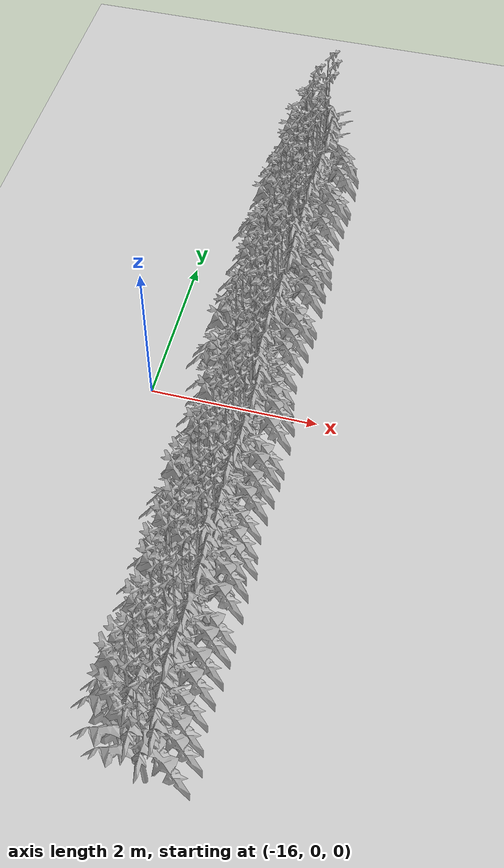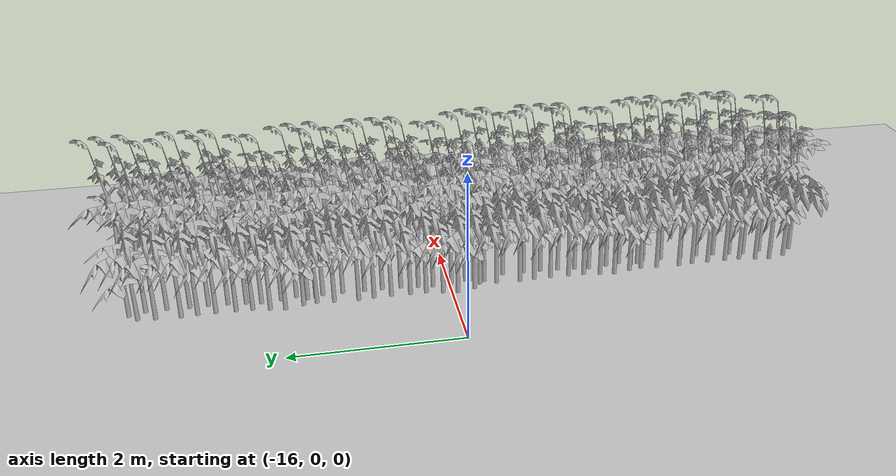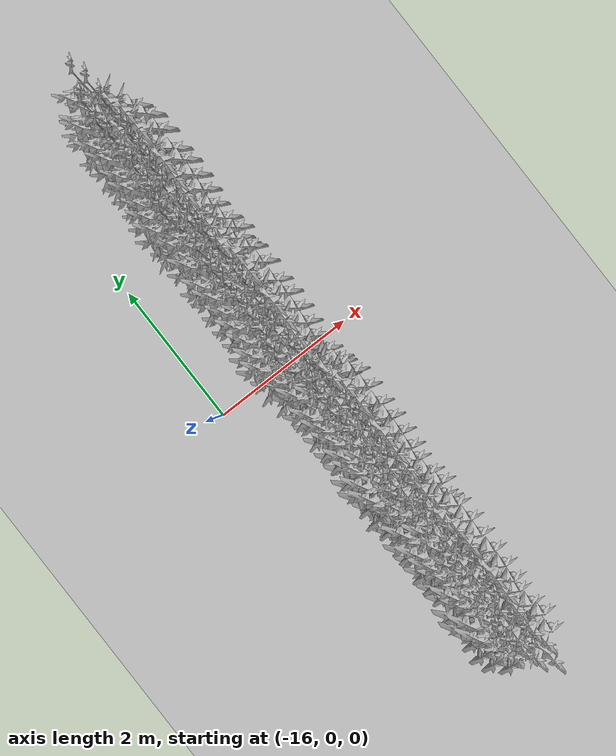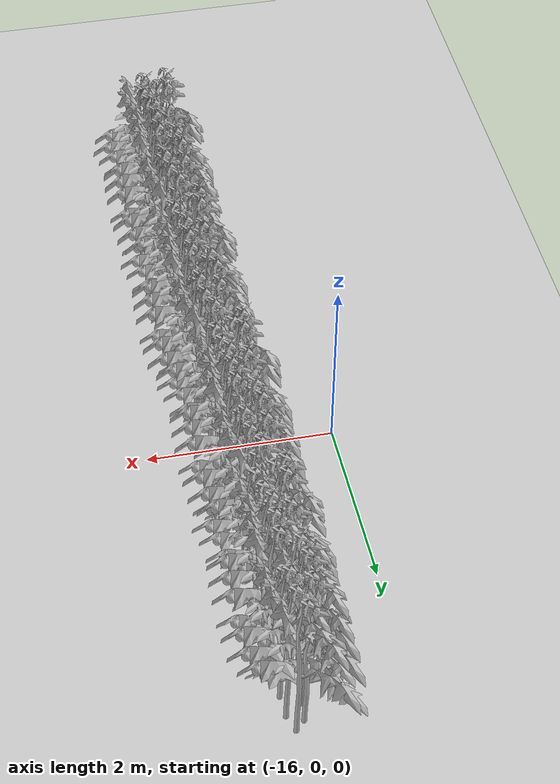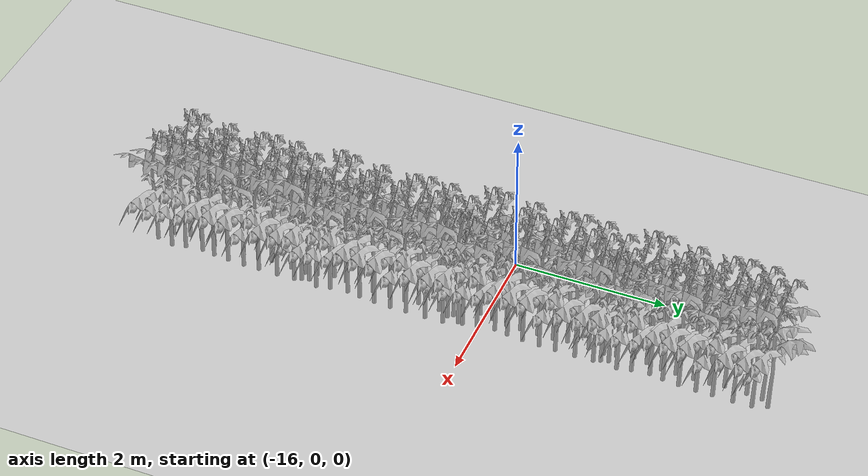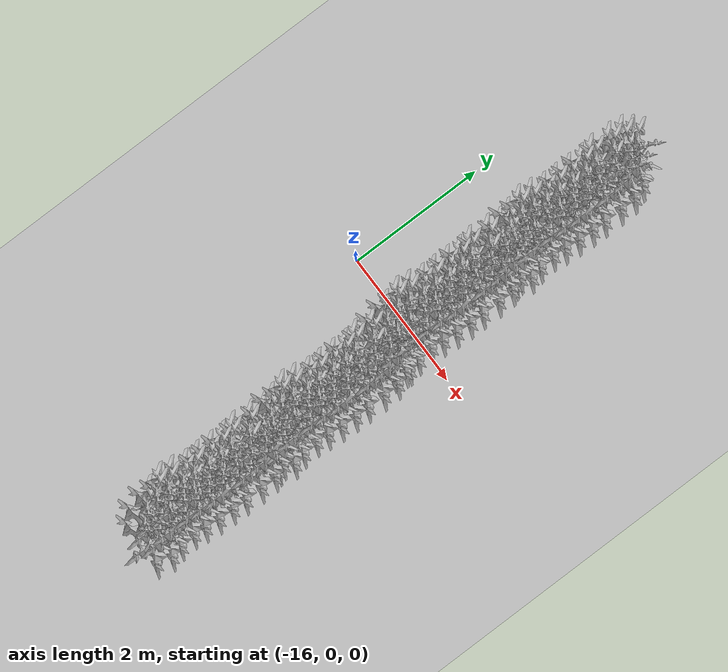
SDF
<sdf version="1.6">
 <world name="default">
  <model name="ground_plane">
   <static>1</static>
   <link name="link">
    <collision name="collision">
     <geometry><plane><normal>0 0 1</normal><size>100 100</size></plane></geometry>
     <surface>
      <contact><collide_bitmask>65535</collide_bitmask></contact>
      <friction><ode><mu>100</mu><mu2>50</mu2></ode></friction>
     </surface>
    </collision>
    <visual name="visual">
     <cast_shadows>0</cast_shadows>
     <geometry><plane><normal>0 0 1</normal><size>100 100</size></plane></geometry>
     <material>
      <script><uri>file://media/materials/scripts/gazebo.material</uri><name>Gazebo/Grey</name></script>
     </material>
    </visual>
   </link>
  </model>
  <model name="MIddle_Plant_3_3">
   <model name="MIddle_Plant_1">
    <model name="tomato_plant_big">
     <static>1</static>
     <link name="link">
      <collision name="collision">
       <pose>0 0 0 1.5708 -0 0</pose>
       <geometry><mesh><scale>0.5 0.6 0.5</scale><uri>model://stick/meshes/stick.dae</uri></mesh></geometry>
      </collision>
      <visual name="visual">
       <geometry>
        <mesh><scale>5e-06 5e-06 7e-06</scale><uri>model://tomato_plant_big/meshes/tomato-plant.dae</uri></mesh>
       </geometry>
      </visual>
     </link>
     <pose>-0.144318 -0.693607 -0 0 -0 0</pose>
    </model>
    <model name="tomato_plant_big_0">
     <static>1</static>
     <link name="link">
      <collision name="collision">
       <pose>0 0 0 1.5708 -0 0</pose>
       <geometry><mesh><scale>0.5 0.6 0.5</scale><uri>model://stick/meshes/stick.dae</uri></mesh></geometry>
      </collision>
      <visual name="visual">
       <geometry>
        <mesh><scale>5e-06 5e-06 7e-06</scale><uri>model://tomato_plant_big/meshes/tomato-plant.dae</uri></mesh>
       </geometry>
      </visual>
     </link>
     <pose>-0.11784 -0.519827 0 0 -0 0</pose>
    </model>
    <model name="tomato_plant_big_1">
     <static>1</static>
     <link name="link">
      <collision name="collision">
       <pose>0 0 0 1.5708 -0 0</pose>
       <geometry><mesh><scale>0.5 0.6 0.5</scale><uri>model://stick/meshes/stick.dae</uri></mesh></geometry>
      </collision>
      <visual name="visual">
       <geometry>
        <mesh><scale>5e-06 5e-06 7e-06</scale><uri>model://tomato_plant_big/meshes/tomato-plant.dae</uri></mesh>
       </geometry>
      </visual>
     </link>
     <pose>0.073755 -0.247584 0 0 -0 0</pose>
    </model>
    <model name="tomato_plant_big_10">
     <static>1</static>
     <link name="link">
      <collision name="collision">
       <pose>0 0 0 1.5708 -0 0</pose>
       <geometry><mesh><scale>0.5 0.6 0.5</scale><uri>model://stick/meshes/stick.dae</uri></mesh></geometry>
      </collision>
      <visual name="visual">
       <geometry>
        <mesh><scale>5e-06 5e-06 7e-06</scale><uri>model://tomato_plant_big/meshes/tomato-plant.dae</uri></mesh>
       </geometry>
      </visual>
     </link>
     <pose>0.037052 1.07094 0 0 -0 0</pose>
    </model>
    <model name="tomato_plant_big_2">
     <static>1</static>
     <link name="link">
      <collision name="collision">
       <pose>0 0 0 1.5708 -0 0</pose>
       <geometry><mesh><scale>0.5 0.6 0.5</scale><uri>model://stick/meshes/stick.dae</uri></mesh></geometry>
      </collision>
      <visual name="visual">
       <geometry>
        <mesh><scale>5e-06 5e-06 7e-06</scale><uri>model://tomato_plant_big/meshes/tomato-plant.dae</uri></mesh>
       </geometry>
      </visual>
     </link>
     <pose>-0.076926 -0.131165 0 0 -0 0</pose>
    </model>
    <model name="tomato_plant_big_3">
     <static>1</static>
     <link name="link">
      <collision name="collision">
       <pose>0 0 0 1.5708 -0 0</pose>
       <geometry><mesh><scale>0.5 0.6 0.5</scale><uri>model://stick/meshes/stick.dae</uri></mesh></geometry>
      </collision>
      <visual name="visual">
       <geometry>
        <mesh><scale>5e-06 5e-06 7e-06</scale><uri>model://tomato_plant_big/meshes/tomato-plant.dae</uri></mesh>
       </geometry>
      </visual>
     </link>
     <pose>0.093714 -0.038386 0 0 -0 0</pose>
    </model>
    <model name="tomato_plant_big_4">
     <static>1</static>
     <link name="link">
      <collision name="collision">
       <pose>0 0 0 1.5708 -0 0</pose>
       <geometry><mesh><scale>0.5 0.6 0.5</scale><uri>model://stick/meshes/stick.dae</uri></mesh></geometry>
      </collision>
      <visual name="visual">
       <geometry>
        <mesh><scale>5e-06 5e-06 7e-06</scale><uri>model://tomato_plant_big/meshes/tomato-plant.dae</uri></mesh>
       </geometry>
      </visual>
     </link>
     <pose>0.103117 0.184356 0 0 -0 0</pose>
    </model>
    <model name="tomato_plant_big_5">
     <static>1</static>
     <link name="link">
      <collision name="collision">
       <pose>0 0 0 1.5708 -0 0</pose>
       <geometry><mesh><scale>0.5 0.6 0.5</scale><uri>model://stick/meshes/stick.dae</uri></mesh></geometry>
      </collision>
      <visual name="visual">
       <geometry>
        <mesh><scale>5e-06 5e-06 7e-06</scale><uri>model://tomato_plant_big/meshes/tomato-plant.dae</uri></mesh>
       </geometry>
      </visual>
     </link>
     <pose>-0.074883 0.301479 0 0 -0 0</pose>
    </model>
    <model name="tomato_plant_big_6">
     <static>1</static>
     <link name="link">
      <collision name="collision">
       <pose>0 0 0 1.5708 -0 0</pose>
       <geometry><mesh><scale>0.5 0.6 0.5</scale><uri>model://stick/meshes/stick.dae</uri></mesh></geometry>
      </collision>
      <visual name="visual">
       <geometry>
        <mesh><scale>5e-06 5e-06 7e-06</scale><uri>model://tomato_plant_big/meshes/tomato-plant.dae</uri></mesh>
       </geometry>
      </visual>
     </link>
     <pose>-0.096921 0.484007 0 0 -0 0</pose>
    </model>
    <model name="tomato_plant_big_7">
     <static>1</static>
     <link name="link">
      <collision name="collision">
       <pose>0 0 0 1.5708 -0 0</pose>
       <geometry><mesh><scale>0.5 0.6 0.5</scale><uri>model://stick/meshes/stick.dae</uri></mesh></geometry>
      </collision>
      <visual name="visual">
       <geometry>
        <mesh><scale>5e-06 5e-06 7e-06</scale><uri>model://tomato_plant_big/meshes/tomato-plant.dae</uri></mesh>
       </geometry>
      </visual>
     </link>
     <pose>0.107491 0.653976 0 0 -0 0</pose>
    </model>
    <model name="tomato_plant_big_8">
     <static>1</static>
     <link name="link">
      <collision name="collision">
       <pose>0 0 0 1.5708 -0 0</pose>
       <geometry><mesh><scale>0.5 0.6 0.5</scale><uri>model://stick/meshes/stick.dae</uri></mesh></geometry>
      </collision>
      <visual name="visual">
       <geometry>
        <mesh><scale>5e-06 5e-06 7e-06</scale><uri>model://tomato_plant_big/meshes/tomato-plant.dae</uri></mesh>
       </geometry>
      </visual>
     </link>
     <pose>-0.07985 0.768549 0 0 -0 0</pose>
    </model>
    <model name="tomato_plant_big_9">
     <static>1</static>
     <link name="link">
      <collision name="collision">
       <pose>0 0 0 1.5708 -0 0</pose>
       <geometry><mesh><scale>0.5 0.6 0.5</scale><uri>model://stick/meshes/stick.dae</uri></mesh></geometry>
      </collision>
      <visual name="visual">
       <geometry>
        <mesh><scale>5e-06 5e-06 7e-06</scale><uri>model://tomato_plant_big/meshes/tomato-plant.dae</uri></mesh>
       </geometry>
      </visual>
     </link>
     <pose>0.098361 0.890852 0 0 -0 0</pose>
    </model>
    <model name="tomato_plant_medium">
     <static>1</static>
     <link name="link">
      <collision name="collision">
       <pose>0 0 0 1.5708 -0 0</pose>
       <geometry><mesh><scale>0.5 0.5 0.5</scale><uri>model://stick/meshes/stick.dae</uri></mesh></geometry>
      </collision>
      <visual name="visual">
       <geometry>
        <mesh><scale>5e-06 5e-06 6e-06</scale><uri>model://tomato_plant_medium/meshes/tomato-plant.dae</uri></mesh>
       </geometry>
      </visual>
     </link>
     <pose>0.056913 -1.05328 0 0 -0 0</pose>
    </model>
    <model name="tomato_plant_medium_0">
     <static>1</static>
     <link name="link">
      <collision name="collision">
       <pose>0 0 0 1.5708 -0 0</pose>
       <geometry><mesh><scale>0.5 0.5 0.5</scale><uri>model://stick/meshes/stick.dae</uri></mesh></geometry>
      </collision>
      <visual name="visual">
       <geometry>
        <mesh><scale>5e-06 5e-06 6e-06</scale><uri>model://tomato_plant_medium/meshes/tomato-plant.dae</uri></mesh>
       </geometry>
      </visual>
     </link>
     <pose>-0.092719 -0.905729 0 0 -0 0</pose>
    </model>
    <model name="tomato_plant_medium_1">
     <static>1</static>
     <link name="link">
      <collision name="collision">
       <pose>0 0 0 1.5708 -0 0</pose>
       <geometry><mesh><scale>0.5 0.5 0.5</scale><uri>model://stick/meshes/stick.dae</uri></mesh></geometry>
      </collision>
      <visual name="visual">
       <geometry>
        <mesh><scale>5e-06 5e-06 6e-06</scale><uri>model://tomato_plant_medium/meshes/tomato-plant.dae</uri></mesh>
       </geometry>
      </visual>
     </link>
     <pose>0.108962 -0.829637 0 0 -0 0</pose>
    </model>
    <model name="tomato_plant_medium_2">
     <static>1</static>
     <link name="link">
      <collision name="collision">
       <pose>0 0 0 1.5708 -0 0</pose>
       <geometry><mesh><scale>0.5 0.5 0.5</scale><uri>model://stick/meshes/stick.dae</uri></mesh></geometry>
      </collision>
      <visual name="visual">
       <geometry>
        <mesh><scale>5e-06 5e-06 6e-06</scale><uri>model://tomato_plant_medium/meshes/tomato-plant.dae</uri></mesh>
       </geometry>
      </visual>
     </link>
     <pose>0.071216 -0.652507 0 0 -0 0</pose>
    </model>
    <model name="tomato_plant_medium_3">
     <static>1</static>
     <link name="link">
      <collision name="collision">
       <pose>0 0 0 1.5708 -0 0</pose>
       <geometry><mesh><scale>0.5 0.5 0.5</scale><uri>model://stick/meshes/stick.dae</uri></mesh></geometry>
      </collision>
      <visual name="visual">
       <geometry>
        <mesh><scale>5e-06 5e-06 6e-06</scale><uri>model://tomato_plant_medium/meshes/tomato-plant.dae</uri></mesh>
       </geometry>
      </visual>
     </link>
     <pose>0.047335 -0.423046 0 0 -0 0</pose>
    </model>
    <model name="tomato_plant_medium_4">
     <static>1</static>
     <link name="link">
      <collision name="collision">
       <pose>0 0 0 1.5708 -0 0</pose>
       <geometry><mesh><scale>0.5 0.5 0.5</scale><uri>model://stick/meshes/stick.dae</uri></mesh></geometry>
      </collision>
      <visual name="visual">
       <geometry>
        <mesh><scale>5e-06 5e-06 6e-06</scale><uri>model://tomato_plant_medium/meshes/tomato-plant.dae</uri></mesh>
       </geometry>
      </visual>
     </link>
     <pose>-0.081012 -0.320324 0 0 -0 0</pose>
    </model>
    <model name="tomato_plant_medium_5">
     <static>1</static>
     <link name="link">
      <collision name="collision">
       <pose>0 0 0 1.5708 -0 0</pose>
       <geometry><mesh><scale>0.5 0.5 0.5</scale><uri>model://stick/meshes/stick.dae</uri></mesh></geometry>
      </collision>
      <visual name="visual">
       <geometry>
        <mesh><scale>5e-06 5e-06 6e-06</scale><uri>model://tomato_plant_medium/meshes/tomato-plant.dae</uri></mesh>
       </geometry>
      </visual>
     </link>
     <pose>-0.07452 0.095988 0 0 -0 0</pose>
    </model>
    <model name="tomato_plant_medium_6">
     <static>1</static>
     <link name="link">
      <collision name="collision">
       <pose>0 0 0 1.5708 -0 0</pose>
       <geometry><mesh><scale>0.5 0.5 0.5</scale><uri>model://stick/meshes/stick.dae</uri></mesh></geometry>
      </collision>
      <visual name="visual">
       <geometry>
        <mesh><scale>5e-06 5e-06 6e-06</scale><uri>model://tomato_plant_medium/meshes/tomato-plant.dae</uri></mesh>
       </geometry>
      </visual>
     </link>
     <pose>0.101424 0.395443 0 0 -0 0</pose>
    </model>
    <model name="tomato_plant_small">
     <static>1</static>
     <link name="link">
      <collision name="collision">
       <pose>0 0 0 1.5708 -0 0</pose>
       <geometry><mesh><scale>0.5 0.45 0.5</scale><uri>model://stick/meshes/stick.dae</uri></mesh></geometry>
      </collision>
      <visual name="visual">
       <geometry>
        <mesh><scale>5e-06 5e-06 5e-06</scale><uri>model://tomato_plant_small/meshes/tomato-plant.dae</uri></mesh>
       </geometry>
      </visual>
     </link>
     <pose>-0.060351 0.969512 0 0 -0 0</pose>
    </model>
    <static>0</static>
    <pose>0.040757 1.77284 0 0 -0 0</pose>
   </model>
   <model name="MIddle_Plant_2">
    <model name="MIddle_Plant_1">
     <model name="tomato_plant_big">
      <static>1</static>
      <link name="link">
       <collision name="collision">
        <pose>0 0 0 1.5708 -0 0</pose>
        <geometry><mesh><scale>0.5 0.6 0.5</scale><uri>model://stick/meshes/stick.dae</uri></mesh></geometry>
       </collision>
       <visual name="visual">
        <geometry>
         <mesh><scale>5e-06 5e-06 7e-06</scale><uri>model://tomato_plant_big/meshes/tomato-plant.dae</uri></mesh>
        </geometry>
       </visual>
      </link>
      <pose>-0.144318 -0.693607 -0 0 -0 0</pose>
     </model>
     <model name="tomato_plant_big_0">
      <static>1</static>
      <link name="link">
       <collision name="collision">
        <pose>0 0 0 1.5708 -0 0</pose>
        <geometry><mesh><scale>0.5 0.6 0.5</scale><uri>model://stick/meshes/stick.dae</uri></mesh></geometry>
       </collision>
       <visual name="visual">
        <geometry>
         <mesh><scale>5e-06 5e-06 7e-06</scale><uri>model://tomato_plant_big/meshes/tomato-plant.dae</uri></mesh>
        </geometry>
       </visual>
      </link>
      <pose>-0.11784 -0.519827 0 0 -0 0</pose>
     </model>
     <model name="tomato_plant_big_1">
      <static>1</static>
      <link name="link">
       <collision name="collision">
        <pose>0 0 0 1.5708 -0 0</pose>
        <geometry><mesh><scale>0.5 0.6 0.5</scale><uri>model://stick/meshes/stick.dae</uri></mesh></geometry>
       </collision>
       <visual name="visual">
        <geometry>
         <mesh><scale>5e-06 5e-06 7e-06</scale><uri>model://tomato_plant_big/meshes/tomato-plant.dae</uri></mesh>
        </geometry>
       </visual>
      </link>
      <pose>0.073755 -0.247584 0 0 -0 0</pose>
     </model>
     <model name="tomato_plant_big_10">
      <static>1</static>
      <link name="link">
       <collision name="collision">
        <pose>0 0 0 1.5708 -0 0</pose>
        <geometry><mesh><scale>0.5 0.6 0.5</scale><uri>model://stick/meshes/stick.dae</uri></mesh></geometry>
       </collision>
       <visual name="visual">
        <geometry>
         <mesh><scale>5e-06 5e-06 7e-06</scale><uri>model://tomato_plant_big/meshes/tomato-plant.dae</uri></mesh>
        </geometry>
       </visual>
      </link>
      <pose>0.037052 1.07094 0 0 -0 0</pose>
     </model>
     <model name="tomato_plant_big_2">
      <static>1</static>
      <link name="link">
       <collision name="collision">
        <pose>0 0 0 1.5708 -0 0</pose>
        <geometry><mesh><scale>0.5 0.6 0.5</scale><uri>model://stick/meshes/stick.dae</uri></mesh></geometry>
       </collision>
       <visual name="visual">
        <geometry>
         <mesh><scale>5e-06 5e-06 7e-06</scale><uri>model://tomato_plant_big/meshes/tomato-plant.dae</uri></mesh>
        </geometry>
       </visual>
      </link>
      <pose>-0.076926 -0.131165 0 0 -0 0</pose>
     </model>
     <model name="tomato_plant_big_3">
      <static>1</static>
      <link name="link">
       <collision name="collision">
        <pose>0 0 0 1.5708 -0 0</pose>
        <geometry><mesh><scale>0.5 0.6 0.5</scale><uri>model://stick/meshes/stick.dae</uri></mesh></geometry>
       </collision>
       <visual name="visual">
        <geometry>
         <mesh><scale>5e-06 5e-06 7e-06</scale><uri>model://tomato_plant_big/meshes/tomato-plant.dae</uri></mesh>
        </geometry>
       </visual>
      </link>
      <pose>0.093714 -0.038386 0 0 -0 0</pose>
     </model>
     <model name="tomato_plant_big_4">
      <static>1</static>
      <link name="link">
       <collision name="collision">
        <pose>0 0 0 1.5708 -0 0</pose>
        <geometry><mesh><scale>0.5 0.6 0.5</scale><uri>model://stick/meshes/stick.dae</uri></mesh></geometry>
       </collision>
       <visual name="visual">
        <geometry>
         <mesh><scale>5e-06 5e-06 7e-06</scale><uri>model://tomato_plant_big/meshes/tomato-plant.dae</uri></mesh>
        </geometry>
       </visual>
      </link>
      <pose>0.103117 0.184356 0 0 -0 0</pose>
     </model>
     <model name="tomato_plant_big_5">
      <static>1</static>
      <link name="link">
       <collision name="collision">
        <pose>0 0 0 1.5708 -0 0</pose>
        <geometry><mesh><scale>0.5 0.6 0.5</scale><uri>model://stick/meshes/stick.dae</uri></mesh></geometry>
       </collision>
       <visual name="visual">
        <geometry>
         <mesh><scale>5e-06 5e-06 7e-06</scale><uri>model://tomato_plant_big/meshes/tomato-plant.dae</uri></mesh>
        </geometry>
       </visual>
      </link>
      <pose>-0.074883 0.301479 0 0 -0 0</pose>
     </model>
     <model name="tomato_plant_big_6">
      <static>1</static>
      <link name="link">
       <collision name="collision">
        <pose>0 0 0 1.5708 -0 0</pose>
        <geometry><mesh><scale>0.5 0.6 0.5</scale><uri>model://stick/meshes/stick.dae</uri></mesh></geometry>
       </collision>
       <visual name="visual">
        <geometry>
         <mesh><scale>5e-06 5e-06 7e-06</scale><uri>model://tomato_plant_big/meshes/tomato-plant.dae</uri></mesh>
        </geometry>
       </visual>
      </link>
      <pose>-0.096921 0.484007 0 0 -0 0</pose>
     </model>
     <model name="tomato_plant_big_7">
      <static>1</static>
      <link name="link">
       <collision name="collision">
        <pose>0 0 0 1.5708 -0 0</pose>
        <geometry><mesh><scale>0.5 0.6 0.5</scale><uri>model://stick/meshes/stick.dae</uri></mesh></geometry>
       </collision>
       <visual name="visual">
        <geometry>
         <mesh><scale>5e-06 5e-06 7e-06</scale><uri>model://tomato_plant_big/meshes/tomato-plant.dae</uri></mesh>
        </geometry>
       </visual>
      </link>
      <pose>0.107491 0.653976 0 0 -0 0</pose>
     </model>
     <model name="tomato_plant_big_8">
      <static>1</static>
      <link name="link">
       <collision name="collision">
        <pose>0 0 0 1.5708 -0 0</pose>
        <geometry><mesh><scale>0.5 0.6 0.5</scale><uri>model://stick/meshes/stick.dae</uri></mesh></geometry>
       </collision>
       <visual name="visual">
        <geometry>
         <mesh><scale>5e-06 5e-06 7e-06</scale><uri>model://tomato_plant_big/meshes/tomato-plant.dae</uri></mesh>
        </geometry>
       </visual>
      </link>
      <pose>-0.07985 0.768549 0 0 -0 0</pose>
     </model>
     <model name="tomato_plant_big_9">
      <static>1</static>
      <link name="link">
       <collision name="collision">
        <pose>0 0 0 1.5708 -0 0</pose>
        <geometry><mesh><scale>0.5 0.6 0.5</scale><uri>model://stick/meshes/stick.dae</uri></mesh></geometry>
       </collision>
       <visual name="visual">
        <geometry>
         <mesh><scale>5e-06 5e-06 7e-06</scale><uri>model://tomato_plant_big/meshes/tomato-plant.dae</uri></mesh>
        </geometry>
       </visual>
      </link>
      <pose>0.098361 0.890852 0 0 -0 0</pose>
     </model>
     <model name="tomato_plant_medium">
      <static>1</static>
      <link name="link">
       <collision name="collision">
        <pose>0 0 0 1.5708 -0 0</pose>
        <geometry><mesh><scale>0.5 0.5 0.5</scale><uri>model://stick/meshes/stick.dae</uri></mesh></geometry>
       </collision>
       <visual name="visual">
        <geometry>
         <mesh><scale>5e-06 5e-06 6e-06</scale><uri>model://tomato_plant_medium/meshes/tomato-plant.dae</uri></mesh>
        </geometry>
       </visual>
      </link>
      <pose>0.056913 -1.05328 0 0 -0 0</pose>
     </model>
     <model name="tomato_plant_medium_0">
      <static>1</static>
      <link name="link">
       <collision name="collision">
        <pose>0 0 0 1.5708 -0 0</pose>
        <geometry><mesh><scale>0.5 0.5 0.5</scale><uri>model://stick/meshes/stick.dae</uri></mesh></geometry>
       </collision>
       <visual name="visual">
        <geometry>
         <mesh><scale>5e-06 5e-06 6e-06</scale><uri>model://tomato_plant_medium/meshes/tomato-plant.dae</uri></mesh>
        </geometry>
       </visual>
      </link>
      <pose>-0.092719 -0.905729 0 0 -0 0</pose>
     </model>
     <model name="tomato_plant_medium_1">
      <static>1</static>
      <link name="link">
       <collision name="collision">
        <pose>0 0 0 1.5708 -0 0</pose>
        <geometry><mesh><scale>0.5 0.5 0.5</scale><uri>model://stick/meshes/stick.dae</uri></mesh></geometry>
       </collision>
       <visual name="visual">
        <geometry>
         <mesh><scale>5e-06 5e-06 6e-06</scale><uri>model://tomato_plant_medium/meshes/tomato-plant.dae</uri></mesh>
        </geometry>
       </visual>
      </link>
      <pose>0.108962 -0.829637 0 0 -0 0</pose>
     </model>
     <model name="tomato_plant_medium_2">
      <static>1</static>
      <link name="link">
       <collision name="collision">
        <pose>0 0 0 1.5708 -0 0</pose>
        <geometry><mesh><scale>0.5 0.5 0.5</scale><uri>model://stick/meshes/stick.dae</uri></mesh></geometry>
       </collision>
       <visual name="visual">
        <geometry>
         <mesh><scale>5e-06 5e-06 6e-06</scale><uri>model://tomato_plant_medium/meshes/tomato-plant.dae</uri></mesh>
        </geometry>
       </visual>
      </link>
      <pose>0.071216 -0.652507 0 0 -0 0</pose>
     </model>
     <model name="tomato_plant_medium_3">
      <static>1</static>
      <link name="link">
       <collision name="collision">
        <pose>0 0 0 1.5708 -0 0</pose>
        <geometry><mesh><scale>0.5 0.5 0.5</scale><uri>model://stick/meshes/stick.dae</uri></mesh></geometry>
       </collision>
       <visual name="visual">
        <geometry>
         <mesh><scale>5e-06 5e-06 6e-06</scale><uri>model://tomato_plant_medium/meshes/tomato-plant.dae</uri></mesh>
        </geometry>
       </visual>
      </link>
      <pose>0.047335 -0.423046 0 0 -0 0</pose>
     </model>
     <model name="tomato_plant_medium_4">
      <static>1</static>
      <link name="link">
       <collision name="collision">
        <pose>0 0 0 1.5708 -0 0</pose>
        <geometry><mesh><scale>0.5 0.5 0.5</scale><uri>model://stick/meshes/stick.dae</uri></mesh></geometry>
       </collision>
       <visual name="visual">
        <geometry>
         <mesh><scale>5e-06 5e-06 6e-06</scale><uri>model://tomato_plant_medium/meshes/tomato-plant.dae</uri></mesh>
        </geometry>
       </visual>
      </link>
      <pose>-0.081012 -0.320324 0 0 -0 0</pose>
     </model>
     <model name="tomato_plant_medium_5">
      <static>1</static>
      <link name="link">
       <collision name="collision">
        <pose>0 0 0 1.5708 -0 0</pose>
        <geometry><mesh><scale>0.5 0.5 0.5</scale><uri>model://stick/meshes/stick.dae</uri></mesh></geometry>
       </collision>
       <visual name="visual">
        <geometry>
         <mesh><scale>5e-06 5e-06 6e-06</scale><uri>model://tomato_plant_medium/meshes/tomato-plant.dae</uri></mesh>
        </geometry>
       </visual>
      </link>
      <pose>-0.07452 0.095988 0 0 -0 0</pose>
     </model>
     <model name="tomato_plant_medium_6">
      <static>1</static>
      <link name="link">
       <collision name="collision">
        <pose>0 0 0 1.5708 -0 0</pose>
        <geometry><mesh><scale>0.5 0.5 0.5</scale><uri>model://stick/meshes/stick.dae</uri></mesh></geometry>
       </collision>
       <visual name="visual">
        <geometry>
         <mesh><scale>5e-06 5e-06 6e-06</scale><uri>model://tomato_plant_medium/meshes/tomato-plant.dae</uri></mesh>
        </geometry>
       </visual>
      </link>
      <pose>0.101424 0.395443 0 0 -0 0</pose>
     </model>
     <model name="tomato_plant_small">
      <static>1</static>
      <link name="link">
       <collision name="collision">
        <pose>0 0 0 1.5708 -0 0</pose>
        <geometry><mesh><scale>0.5 0.45 0.5</scale><uri>model://stick/meshes/stick.dae</uri></mesh></geometry>
       </collision>
       <visual name="visual">
        <geometry>
         <mesh><scale>5e-06 5e-06 5e-06</scale><uri>model://tomato_plant_small/meshes/tomato-plant.dae</uri></mesh>
        </geometry>
       </visual>
      </link>
      <pose>-0.060351 0.969512 0 0 -0 0</pose>
     </model>
     <static>0</static>
     <pose>0.763113 0.028917 0 0 -0 0</pose>
    </model>
    <model name="tomato_plant_big">
     <static>1</static>
     <link name="link">
      <collision name="collision">
       <pose>0 0 0 1.5708 -0 0</pose>
       <geometry><mesh><scale>0.5 0.6 0.5</scale><uri>model://stick/meshes/stick.dae</uri></mesh></geometry>
      </collision>
      <visual name="visual">
       <geometry>
        <mesh><scale>5e-06 5e-06 7e-06</scale><uri>model://tomato_plant_big/meshes/tomato-plant.dae</uri></mesh>
       </geometry>
      </visual>
     </link>
     <pose>0.613724 -2.69399 -0 0 -0 0</pose>
    </model>
    <model name="tomato_plant_big_0">
     <static>1</static>
     <link name="link">
      <collision name="collision">
       <pose>0 0 0 1.5708 -0 0</pose>
       <geometry><mesh><scale>0.5 0.6 0.5</scale><uri>model://stick/meshes/stick.dae</uri></mesh></geometry>
      </collision>
      <visual name="visual">
       <geometry>
        <mesh><scale>5e-06 5e-06 7e-06</scale><uri>model://tomato_plant_big/meshes/tomato-plant.dae</uri></mesh>
       </geometry>
      </visual>
     </link>
     <pose>0.640202 -2.52021 0 0 -0 0</pose>
    </model>
    <model name="tomato_plant_big_1">
     <static>1</static>
     <link name="link">
      <collision name="collision">
       <pose>0 0 0 1.5708 -0 0</pose>
       <geometry><mesh><scale>0.5 0.6 0.5</scale><uri>model://stick/meshes/stick.dae</uri></mesh></geometry>
      </collision>
      <visual name="visual">
       <geometry>
        <mesh><scale>5e-06 5e-06 7e-06</scale><uri>model://tomato_plant_big/meshes/tomato-plant.dae</uri></mesh>
       </geometry>
      </visual>
     </link>
     <pose>0.831797 -2.24797 0 0 -0 0</pose>
    </model>
    <model name="tomato_plant_big_10">
     <static>1</static>
     <link name="link">
      <collision name="collision">
       <pose>0 0 0 1.5708 -0 0</pose>
       <geometry><mesh><scale>0.5 0.6 0.5</scale><uri>model://stick/meshes/stick.dae</uri></mesh></geometry>
      </collision>
      <visual name="visual">
       <geometry>
        <mesh><scale>5e-06 5e-06 7e-06</scale><uri>model://tomato_plant_big/meshes/tomato-plant.dae</uri></mesh>
       </geometry>
      </visual>
     </link>
     <pose>0.795094 -0.929446 0 0 -0 0</pose>
    </model>
    <model name="tomato_plant_big_2">
     <static>1</static>
     <link name="link">
      <collision name="collision">
       <pose>0 0 0 1.5708 -0 0</pose>
       <geometry><mesh><scale>0.5 0.6 0.5</scale><uri>model://stick/meshes/stick.dae</uri></mesh></geometry>
      </collision>
      <visual name="visual">
       <geometry>
        <mesh><scale>5e-06 5e-06 7e-06</scale><uri>model://tomato_plant_big/meshes/tomato-plant.dae</uri></mesh>
       </geometry>
      </visual>
     </link>
     <pose>0.681116 -2.13155 0 0 -0 0</pose>
    </model>
    <model name="tomato_plant_big_3">
     <static>1</static>
     <link name="link">
      <collision name="collision">
       <pose>0 0 0 1.5708 -0 0</pose>
       <geometry><mesh><scale>0.5 0.6 0.5</scale><uri>model://stick/meshes/stick.dae</uri></mesh></geometry>
      </collision>
      <visual name="visual">
       <geometry>
        <mesh><scale>5e-06 5e-06 7e-06</scale><uri>model://tomato_plant_big/meshes/tomato-plant.dae</uri></mesh>
       </geometry>
      </visual>
     </link>
     <pose>0.851755 -2.03877 0 0 -0 0</pose>
    </model>
    <model name="tomato_plant_big_4">
     <static>1</static>
     <link name="link">
      <collision name="collision">
       <pose>0 0 0 1.5708 -0 0</pose>
       <geometry><mesh><scale>0.5 0.6 0.5</scale><uri>model://stick/meshes/stick.dae</uri></mesh></geometry>
      </collision>
      <visual name="visual">
       <geometry>
        <mesh><scale>5e-06 5e-06 7e-06</scale><uri>model://tomato_plant_big/meshes/tomato-plant.dae</uri></mesh>
       </geometry>
      </visual>
     </link>
     <pose>0.861158 -1.81603 0 0 -0 0</pose>
    </model>
    <model name="tomato_plant_big_5">
     <static>1</static>
     <link name="link">
      <collision name="collision">
       <pose>0 0 0 1.5708 -0 0</pose>
       <geometry><mesh><scale>0.5 0.6 0.5</scale><uri>model://stick/meshes/stick.dae</uri></mesh></geometry>
      </collision>
      <visual name="visual">
       <geometry>
        <mesh><scale>5e-06 5e-06 7e-06</scale><uri>model://tomato_plant_big/meshes/tomato-plant.dae</uri></mesh>
       </geometry>
      </visual>
     </link>
     <pose>0.683158 -1.69891 0 0 -0 0</pose>
    </model>
    <model name="tomato_plant_big_6">
     <static>1</static>
     <link name="link">
      <collision name="collision">
       <pose>0 0 0 1.5708 -0 0</pose>
       <geometry><mesh><scale>0.5 0.6 0.5</scale><uri>model://stick/meshes/stick.dae</uri></mesh></geometry>
      </collision>
      <visual name="visual">
       <geometry>
        <mesh><scale>5e-06 5e-06 7e-06</scale><uri>model://tomato_plant_big/meshes/tomato-plant.dae</uri></mesh>
       </geometry>
      </visual>
     </link>
     <pose>0.66112 -1.51638 0 0 -0 0</pose>
    </model>
    <model name="tomato_plant_big_7">
     <static>1</static>
     <link name="link">
      <collision name="collision">
       <pose>0 0 0 1.5708 -0 0</pose>
       <geometry><mesh><scale>0.5 0.6 0.5</scale><uri>model://stick/meshes/stick.dae</uri></mesh></geometry>
      </collision>
      <visual name="visual">
       <geometry>
        <mesh><scale>5e-06 5e-06 7e-06</scale><uri>model://tomato_plant_big/meshes/tomato-plant.dae</uri></mesh>
       </geometry>
      </visual>
     </link>
     <pose>0.865532 -1.34641 0 0 -0 0</pose>
    </model>
    <model name="tomato_plant_big_8">
     <static>1</static>
     <link name="link">
      <collision name="collision">
       <pose>0 0 0 1.5708 -0 0</pose>
       <geometry><mesh><scale>0.5 0.6 0.5</scale><uri>model://stick/meshes/stick.dae</uri></mesh></geometry>
      </collision>
      <visual name="visual">
       <geometry>
        <mesh><scale>5e-06 5e-06 7e-06</scale><uri>model://tomato_plant_big/meshes/tomato-plant.dae</uri></mesh>
       </geometry>
      </visual>
     </link>
     <pose>0.678192 -1.23184 0 0 -0 0</pose>
    </model>
    <model name="tomato_plant_big_9">
     <static>1</static>
     <link name="link">
      <collision name="collision">
       <pose>0 0 0 1.5708 -0 0</pose>
       <geometry><mesh><scale>0.5 0.6 0.5</scale><uri>model://stick/meshes/stick.dae</uri></mesh></geometry>
      </collision>
      <visual name="visual">
       <geometry>
        <mesh><scale>5e-06 5e-06 7e-06</scale><uri>model://tomato_plant_big/meshes/tomato-plant.dae</uri></mesh>
       </geometry>
      </visual>
     </link>
     <pose>0.856402 -1.10953 0 0 -0 0</pose>
    </model>
    <model name="tomato_plant_medium">
     <static>1</static>
     <link name="link">
      <collision name="collision">
       <pose>0 0 0 1.5708 -0 0</pose>
       <geometry><mesh><scale>0.5 0.5 0.5</scale><uri>model://stick/meshes/stick.dae</uri></mesh></geometry>
      </collision>
      <visual name="visual">
       <geometry>
        <mesh><scale>5e-06 5e-06 6e-06</scale><uri>model://tomato_plant_medium/meshes/tomato-plant.dae</uri></mesh>
       </geometry>
      </visual>
     </link>
     <pose>0.814955 -3.05367 0 0 -0 0</pose>
    </model>
    <model name="tomato_plant_medium_0">
     <static>1</static>
     <link name="link">
      <collision name="collision">
       <pose>0 0 0 1.5708 -0 0</pose>
       <geometry><mesh><scale>0.5 0.5 0.5</scale><uri>model://stick/meshes/stick.dae</uri></mesh></geometry>
      </collision>
      <visual name="visual">
       <geometry>
        <mesh><scale>5e-06 5e-06 6e-06</scale><uri>model://tomato_plant_medium/meshes/tomato-plant.dae</uri></mesh>
       </geometry>
      </visual>
     </link>
     <pose>0.665322 -2.90611 0 0 -0 0</pose>
    </model>
    <model name="tomato_plant_medium_1">
     <static>1</static>
     <link name="link">
      <collision name="collision">
       <pose>0 0 0 1.5708 -0 0</pose>
       <geometry><mesh><scale>0.5 0.5 0.5</scale><uri>model://stick/meshes/stick.dae</uri></mesh></geometry>
      </collision>
      <visual name="visual">
       <geometry>
        <mesh><scale>5e-06 5e-06 6e-06</scale><uri>model://tomato_plant_medium/meshes/tomato-plant.dae</uri></mesh>
       </geometry>
      </visual>
     </link>
     <pose>0.867004 -2.83002 0 0 -0 0</pose>
    </model>
    <model name="tomato_plant_medium_2">
     <static>1</static>
     <link name="link">
      <collision name="collision">
       <pose>0 0 0 1.5708 -0 0</pose>
       <geometry><mesh><scale>0.5 0.5 0.5</scale><uri>model://stick/meshes/stick.dae</uri></mesh></geometry>
      </collision>
      <visual name="visual">
       <geometry>
        <mesh><scale>5e-06 5e-06 6e-06</scale><uri>model://tomato_plant_medium/meshes/tomato-plant.dae</uri></mesh>
       </geometry>
      </visual>
     </link>
     <pose>0.829257 -2.65289 0 0 -0 0</pose>
    </model>
    <model name="tomato_plant_medium_3">
     <static>1</static>
     <link name="link">
      <collision name="collision">
       <pose>0 0 0 1.5708 -0 0</pose>
       <geometry><mesh><scale>0.5 0.5 0.5</scale><uri>model://stick/meshes/stick.dae</uri></mesh></geometry>
      </collision>
      <visual name="visual">
       <geometry>
        <mesh><scale>5e-06 5e-06 6e-06</scale><uri>model://tomato_plant_medium/meshes/tomato-plant.dae</uri></mesh>
       </geometry>
      </visual>
     </link>
     <pose>0.805376 -2.42343 0 0 -0 0</pose>
    </model>
    <model name="tomato_plant_medium_4">
     <static>1</static>
     <link name="link">
      <collision name="collision">
       <pose>0 0 0 1.5708 -0 0</pose>
       <geometry><mesh><scale>0.5 0.5 0.5</scale><uri>model://stick/meshes/stick.dae</uri></mesh></geometry>
      </collision>
      <visual name="visual">
       <geometry>
        <mesh><scale>5e-06 5e-06 6e-06</scale><uri>model://tomato_plant_medium/meshes/tomato-plant.dae</uri></mesh>
       </geometry>
      </visual>
     </link>
     <pose>0.67703 -2.32071 0 0 -0 0</pose>
    </model>
    <model name="tomato_plant_medium_5">
     <static>1</static>
     <link name="link">
      <collision name="collision">
       <pose>0 0 0 1.5708 -0 0</pose>
       <geometry><mesh><scale>0.5 0.5 0.5</scale><uri>model://stick/meshes/stick.dae</uri></mesh></geometry>
      </collision>
      <visual name="visual">
       <geometry>
        <mesh><scale>5e-06 5e-06 6e-06</scale><uri>model://tomato_plant_medium/meshes/tomato-plant.dae</uri></mesh>
       </geometry>
      </visual>
     </link>
     <pose>0.683522 -1.9044 0 0 -0 0</pose>
    </model>
    <model name="tomato_plant_medium_6">
     <static>1</static>
     <link name="link">
      <collision name="collision">
       <pose>0 0 0 1.5708 -0 0</pose>
       <geometry><mesh><scale>0.5 0.5 0.5</scale><uri>model://stick/meshes/stick.dae</uri></mesh></geometry>
      </collision>
      <visual name="visual">
       <geometry>
        <mesh><scale>5e-06 5e-06 6e-06</scale><uri>model://tomato_plant_medium/meshes/tomato-plant.dae</uri></mesh>
       </geometry>
      </visual>
     </link>
     <pose>0.859466 -1.60494 0 0 -0 0</pose>
    </model>
    <model name="tomato_plant_small">
     <static>1</static>
     <link name="link">
      <collision name="collision">
       <pose>0 0 0 1.5708 -0 0</pose>
       <geometry><mesh><scale>0.5 0.45 0.5</scale><uri>model://stick/meshes/stick.dae</uri></mesh></geometry>
      </collision>
      <visual name="visual">
       <geometry>
        <mesh><scale>5e-06 5e-06 5e-06</scale><uri>model://tomato_plant_small/meshes/tomato-plant.dae</uri></mesh>
       </geometry>
      </visual>
     </link>
     <pose>0.697691 -1.03087 0 0 -0 0</pose>
    </model>
    <static>0</static>
    <pose>-0.78485 5.73439 0 0 -0 0</pose>
   </model>
   <model name="tomato_plant_big">
    <static>1</static>
    <link name="link">
     <collision name="collision">
      <pose>0 0 0 1.5708 -0 0</pose>
      <geometry><mesh><scale>0.5 0.6 0.5</scale><uri>model://stick/meshes/stick.dae</uri></mesh></geometry>
     </collision>
     <visual name="visual">
      <geometry>
       <mesh><scale>5e-06 5e-06 7e-06</scale><uri>model://tomato_plant_big/meshes/tomato-plant.dae</uri></mesh>
      </geometry>
     </visual>
    </link>
    <pose>-0.108632 -0.950068 -0 0 -0 0</pose>
   </model>
   <model name="tomato_plant_big_0">
    <static>1</static>
    <link name="link">
     <collision name="collision">
      <pose>0 0 0 1.5708 -0 0</pose>
      <geometry><mesh><scale>0.5 0.6 0.5</scale><uri>model://stick/meshes/stick.dae</uri></mesh></geometry>
     </collision>
     <visual name="visual">
      <geometry>
       <mesh><scale>5e-06 5e-06 7e-06</scale><uri>model://tomato_plant_big/meshes/tomato-plant.dae</uri></mesh>
      </geometry>
     </visual>
    </link>
    <pose>-0.082154 -0.776288 0 0 -0 0</pose>
   </model>
   <model name="tomato_plant_big_1">
    <static>1</static>
    <link name="link">
     <collision name="collision">
      <pose>0 0 0 1.5708 -0 0</pose>
      <geometry><mesh><scale>0.5 0.6 0.5</scale><uri>model://stick/meshes/stick.dae</uri></mesh></geometry>
     </collision>
     <visual name="visual">
      <geometry>
       <mesh><scale>5e-06 5e-06 7e-06</scale><uri>model://tomato_plant_big/meshes/tomato-plant.dae</uri></mesh>
      </geometry>
     </visual>
    </link>
    <pose>0.109441 -0.504045 0 0 -0 0</pose>
   </model>
   <model name="tomato_plant_big_10">
    <static>1</static>
    <link name="link">
     <collision name="collision">
      <pose>0 0 0 1.5708 -0 0</pose>
      <geometry><mesh><scale>0.5 0.6 0.5</scale><uri>model://stick/meshes/stick.dae</uri></mesh></geometry>
     </collision>
     <visual name="visual">
      <geometry>
       <mesh><scale>5e-06 5e-06 7e-06</scale><uri>model://tomato_plant_big/meshes/tomato-plant.dae</uri></mesh>
      </geometry>
     </visual>
    </link>
    <pose>0.072738 0.814477 0 0 -0 0</pose>
   </model>
   <model name="tomato_plant_big_2">
    <static>1</static>
    <link name="link">
     <collision name="collision">
      <pose>0 0 0 1.5708 -0 0</pose>
      <geometry><mesh><scale>0.5 0.6 0.5</scale><uri>model://stick/meshes/stick.dae</uri></mesh></geometry>
     </collision>
     <visual name="visual">
      <geometry>
       <mesh><scale>5e-06 5e-06 7e-06</scale><uri>model://tomato_plant_big/meshes/tomato-plant.dae</uri></mesh>
      </geometry>
     </visual>
    </link>
    <pose>-0.04124 -0.387626 0 0 -0 0</pose>
   </model>
   <model name="tomato_plant_big_3">
    <static>1</static>
    <link name="link">
     <collision name="collision">
      <pose>0 0 0 1.5708 -0 0</pose>
      <geometry><mesh><scale>0.5 0.6 0.5</scale><uri>model://stick/meshes/stick.dae</uri></mesh></geometry>
     </collision>
     <visual name="visual">
      <geometry>
       <mesh><scale>5e-06 5e-06 7e-06</scale><uri>model://tomato_plant_big/meshes/tomato-plant.dae</uri></mesh>
      </geometry>
     </visual>
    </link>
    <pose>0.129399 -0.294847 0 0 -0 0</pose>
   </model>
   <model name="tomato_plant_big_4">
    <static>1</static>
    <link name="link">
     <collision name="collision">
      <pose>0 0 0 1.5708 -0 0</pose>
      <geometry><mesh><scale>0.5 0.6 0.5</scale><uri>model://stick/meshes/stick.dae</uri></mesh></geometry>
     </collision>
     <visual name="visual">
      <geometry>
       <mesh><scale>5e-06 5e-06 7e-06</scale><uri>model://tomato_plant_big/meshes/tomato-plant.dae</uri></mesh>
      </geometry>
     </visual>
    </link>
    <pose>0.138802 -0.072105 0 0 -0 0</pose>
   </model>
   <model name="tomato_plant_big_5">
    <static>1</static>
    <link name="link">
     <collision name="collision">
      <pose>0 0 0 1.5708 -0 0</pose>
      <geometry><mesh><scale>0.5 0.6 0.5</scale><uri>model://stick/meshes/stick.dae</uri></mesh></geometry>
     </collision>
     <visual name="visual">
      <geometry>
       <mesh><scale>5e-06 5e-06 7e-06</scale><uri>model://tomato_plant_big/meshes/tomato-plant.dae</uri></mesh>
      </geometry>
     </visual>
    </link>
    <pose>-0.039198 0.045018 0 0 -0 0</pose>
   </model>
   <model name="tomato_plant_big_6">
    <static>1</static>
    <link name="link">
     <collision name="collision">
      <pose>0 0 0 1.5708 -0 0</pose>
      <geometry><mesh><scale>0.5 0.6 0.5</scale><uri>model://stick/meshes/stick.dae</uri></mesh></geometry>
     </collision>
     <visual name="visual">
      <geometry>
       <mesh><scale>5e-06 5e-06 7e-06</scale><uri>model://tomato_plant_big/meshes/tomato-plant.dae</uri></mesh>
      </geometry>
     </visual>
    </link>
    <pose>-0.061236 0.227546 0 0 -0 0</pose>
   </model>
   <model name="tomato_plant_big_7">
    <static>1</static>
    <link name="link">
     <collision name="collision">
      <pose>0 0 0 1.5708 -0 0</pose>
      <geometry><mesh><scale>0.5 0.6 0.5</scale><uri>model://stick/meshes/stick.dae</uri></mesh></geometry>
     </collision>
     <visual name="visual">
      <geometry>
       <mesh><scale>5e-06 5e-06 7e-06</scale><uri>model://tomato_plant_big/meshes/tomato-plant.dae</uri></mesh>
      </geometry>
     </visual>
    </link>
    <pose>0.143176 0.397515 0 0 -0 0</pose>
   </model>
   <model name="tomato_plant_big_8">
    <static>1</static>
    <link name="link">
     <collision name="collision">
      <pose>0 0 0 1.5708 -0 0</pose>
      <geometry><mesh><scale>0.5 0.6 0.5</scale><uri>model://stick/meshes/stick.dae</uri></mesh></geometry>
     </collision>
     <visual name="visual">
      <geometry>
       <mesh><scale>5e-06 5e-06 7e-06</scale><uri>model://tomato_plant_big/meshes/tomato-plant.dae</uri></mesh>
      </geometry>
     </visual>
    </link>
    <pose>-0.044164 0.512088 0 0 -0 0</pose>
   </model>
   <model name="tomato_plant_big_9">
    <static>1</static>
    <link name="link">
     <collision name="collision">
      <pose>0 0 0 1.5708 -0 0</pose>
      <geometry><mesh><scale>0.5 0.6 0.5</scale><uri>model://stick/meshes/stick.dae</uri></mesh></geometry>
     </collision>
     <visual name="visual">
      <geometry>
       <mesh><scale>5e-06 5e-06 7e-06</scale><uri>model://tomato_plant_big/meshes/tomato-plant.dae</uri></mesh>
      </geometry>
     </visual>
    </link>
    <pose>0.134046 0.634391 0 0 -0 0</pose>
   </model>
   <model name="tomato_plant_medium">
    <static>1</static>
    <link name="link">
     <collision name="collision">
      <pose>0 0 0 1.5708 -0 0</pose>
      <geometry><mesh><scale>0.5 0.5 0.5</scale><uri>model://stick/meshes/stick.dae</uri></mesh></geometry>
     </collision>
     <visual name="visual">
      <geometry>
       <mesh><scale>5e-06 5e-06 6e-06</scale><uri>model://tomato_plant_medium/meshes/tomato-plant.dae</uri></mesh>
      </geometry>
     </visual>
    </link>
    <pose>0.092599 -1.30974 0 0 -0 0</pose>
   </model>
   <model name="tomato_plant_medium_0">
    <static>1</static>
    <link name="link">
     <collision name="collision">
      <pose>0 0 0 1.5708 -0 0</pose>
      <geometry><mesh><scale>0.5 0.5 0.5</scale><uri>model://stick/meshes/stick.dae</uri></mesh></geometry>
     </collision>
     <visual name="visual">
      <geometry>
       <mesh><scale>5e-06 5e-06 6e-06</scale><uri>model://tomato_plant_medium/meshes/tomato-plant.dae</uri></mesh>
      </geometry>
     </visual>
    </link>
    <pose>-0.057034 -1.16219 0 0 -0 0</pose>
   </model>
   <model name="tomato_plant_medium_1">
    <static>1</static>
    <link name="link">
     <collision name="collision">
      <pose>0 0 0 1.5708 -0 0</pose>
      <geometry><mesh><scale>0.5 0.5 0.5</scale><uri>model://stick/meshes/stick.dae</uri></mesh></geometry>
     </collision>
     <visual name="visual">
      <geometry>
       <mesh><scale>5e-06 5e-06 6e-06</scale><uri>model://tomato_plant_medium/meshes/tomato-plant.dae</uri></mesh>
      </geometry>
     </visual>
    </link>
    <pose>0.144648 -1.0861 0 0 -0 0</pose>
   </model>
   <model name="tomato_plant_medium_2">
    <static>1</static>
    <link name="link">
     <collision name="collision">
      <pose>0 0 0 1.5708 -0 0</pose>
      <geometry><mesh><scale>0.5 0.5 0.5</scale><uri>model://stick/meshes/stick.dae</uri></mesh></geometry>
     </collision>
     <visual name="visual">
      <geometry>
       <mesh><scale>5e-06 5e-06 6e-06</scale><uri>model://tomato_plant_medium/meshes/tomato-plant.dae</uri></mesh>
      </geometry>
     </visual>
    </link>
    <pose>0.106901 -0.908968 0 0 -0 0</pose>
   </model>
   <model name="tomato_plant_medium_3">
    <static>1</static>
    <link name="link">
     <collision name="collision">
      <pose>0 0 0 1.5708 -0 0</pose>
      <geometry><mesh><scale>0.5 0.5 0.5</scale><uri>model://stick/meshes/stick.dae</uri></mesh></geometry>
     </collision>
     <visual name="visual">
      <geometry>
       <mesh><scale>5e-06 5e-06 6e-06</scale><uri>model://tomato_plant_medium/meshes/tomato-plant.dae</uri></mesh>
      </geometry>
     </visual>
    </link>
    <pose>0.08302 -0.679508 0 0 -0 0</pose>
   </model>
   <model name="tomato_plant_medium_4">
    <static>1</static>
    <link name="link">
     <collision name="collision">
      <pose>0 0 0 1.5708 -0 0</pose>
      <geometry><mesh><scale>0.5 0.5 0.5</scale><uri>model://stick/meshes/stick.dae</uri></mesh></geometry>
     </collision>
     <visual name="visual">
      <geometry>
       <mesh><scale>5e-06 5e-06 6e-06</scale><uri>model://tomato_plant_medium/meshes/tomato-plant.dae</uri></mesh>
      </geometry>
     </visual>
    </link>
    <pose>-0.045326 -0.576785 0 0 -0 0</pose>
   </model>
   <model name="tomato_plant_medium_5">
    <static>1</static>
    <link name="link">
     <collision name="collision">
      <pose>0 0 0 1.5708 -0 0</pose>
      <geometry><mesh><scale>0.5 0.5 0.5</scale><uri>model://stick/meshes/stick.dae</uri></mesh></geometry>
     </collision>
     <visual name="visual">
      <geometry>
       <mesh><scale>5e-06 5e-06 6e-06</scale><uri>model://tomato_plant_medium/meshes/tomato-plant.dae</uri></mesh>
      </geometry>
     </visual>
    </link>
    <pose>-0.038834 -0.160473 0 0 -0 0</pose>
   </model>
   <model name="tomato_plant_medium_6">
    <static>1</static>
    <link name="link">
     <collision name="collision">
      <pose>0 0 0 1.5708 -0 0</pose>
      <geometry><mesh><scale>0.5 0.5 0.5</scale><uri>model://stick/meshes/stick.dae</uri></mesh></geometry>
     </collision>
     <visual name="visual">
      <geometry>
       <mesh><scale>5e-06 5e-06 6e-06</scale><uri>model://tomato_plant_medium/meshes/tomato-plant.dae</uri></mesh>
      </geometry>
     </visual>
    </link>
    <pose>0.13711 0.138982 0 0 -0 0</pose>
   </model>
   <model name="tomato_plant_small">
    <static>1</static>
    <link name="link">
     <collision name="collision">
      <pose>0 0 0 1.5708 -0 0</pose>
      <geometry><mesh><scale>0.5 0.45 0.5</scale><uri>model://stick/meshes/stick.dae</uri></mesh></geometry>
     </collision>
     <visual name="visual">
      <geometry>
       <mesh><scale>5e-06 5e-06 5e-06</scale><uri>model://tomato_plant_small/meshes/tomato-plant.dae</uri></mesh>
      </geometry>
     </visual>
    </link>
    <pose>-0.024665 0.713051 0 0 -0 0</pose>
   </model>
   <static>0</static>
   <pose>-14.7968 -3.12776 0 0 -0 0</pose>
  </model>
 </world>
</sdf>
